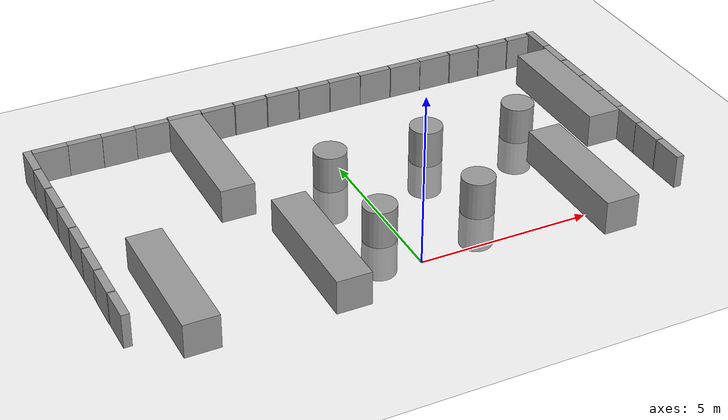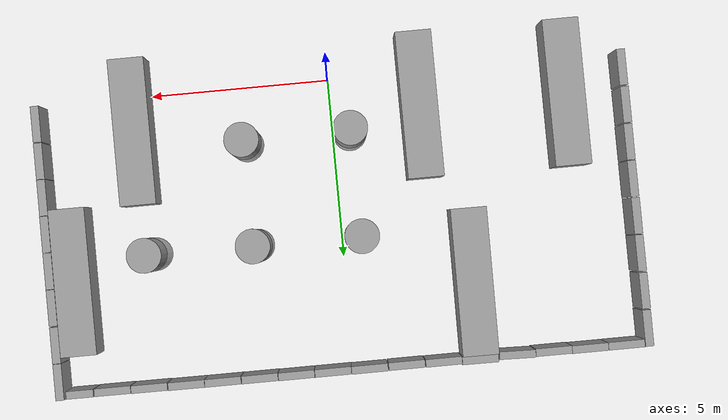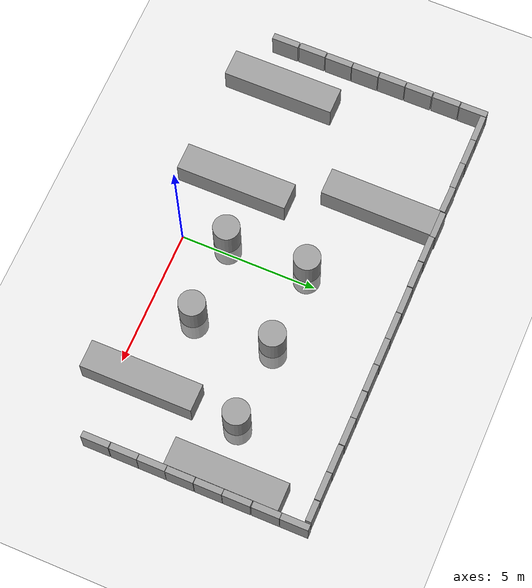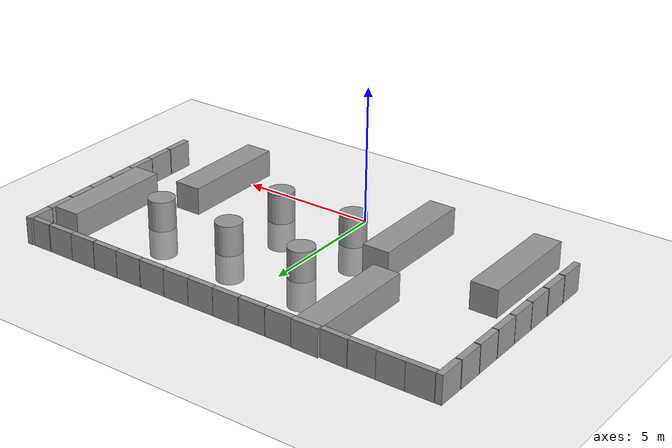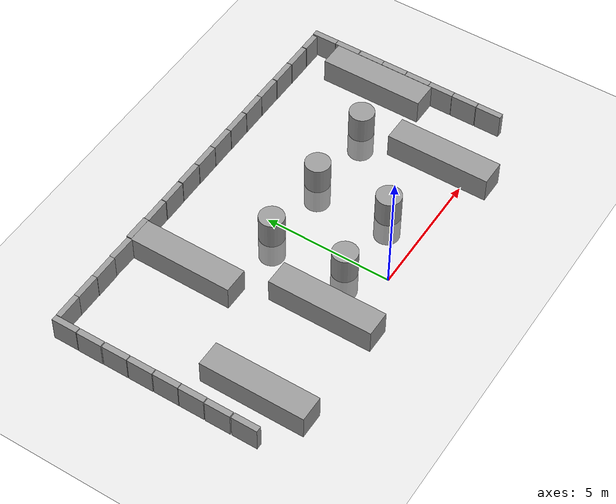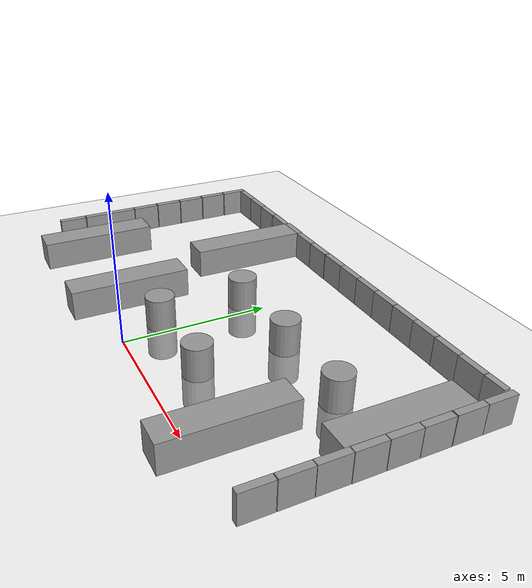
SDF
<sdf version="1.6">
 <world name="default">
  <model name="ground_plane">
   <static>1</static>
   <static>1</static>
   <link name="link">
    <collision name="collision">
     <geometry><plane><normal>0 0 1</normal><size>100 100</size></plane></geometry>
     <surface><friction><ode><mu>100</mu><mu2>50</mu2></ode></friction></surface>
    </collision>
    <visual name="visual">
     <cast_shadows>0</cast_shadows>
     <geometry><plane><normal>0 0 1</normal><size>100 100</size></plane></geometry>
     <material>
      <script><uri>file://media/materials/scripts/gazebo.material</uri><name>Gazebo/Grey</name></script>
     </material>
    </visual>
   </link>
  </model>
  <model name="unit_box_clone">
   <pose>-7.49845 8.11984 0.499999 1e-06 2e-06 0.000176</pose>
   <link name="link">
    <inertial>
     <mass>1</mass>
     <inertia>
      <ixx>0.166667</ixx>
      <ixy>0</ixy>
      <ixz>0</ixz>
      <iyy>0.166667</iyy>
      <iyz>0</iyz>
      <izz>0.166667</izz>
     </inertia>
    </inertial>
    <collision name="collision"><geometry><box><size>1 0.210541 1</size></box></geometry></collision>
    <visual name="visual">
     <geometry><box><size>1 0.210541 1</size></box></geometry>
     <material>
      <script><name>Gazebo/Grey</name><uri>file://media/materials/scripts/gazebo.material</uri></script>
     </material>
    </visual>
   </link>
  </model>
  <model name="unit_box_clone_0">
   <pose>-6.49722 8.11974 0.499994 1e-06 -2e-06 -0.002156</pose>
   <link name="link">
    <inertial>
     <mass>1</mass>
     <inertia>
      <ixx>0.166667</ixx>
      <ixy>0</ixy>
      <ixz>0</ixz>
      <iyy>0.166667</iyy>
      <iyz>0</iyz>
      <izz>0.166667</izz>
     </inertia>
    </inertial>
    <collision name="collision"><geometry><box><size>1 0.210541 1</size></box></geometry></collision>
    <visual name="visual">
     <geometry><box><size>1 0.210541 1</size></box></geometry>
     <material>
      <script><name>Gazebo/Grey</name><uri>file://media/materials/scripts/gazebo.material</uri></script>
     </material>
    </visual>
   </link>
  </model>
  <model name="unit_box_clone_1">
   <pose>-5.49723 8.10845 0.499947 -1e-06 -7e-06 -0.002171</pose>
   <link name="link">
    <inertial>
     <mass>1</mass>
     <inertia>
      <ixx>0.166667</ixx>
      <ixy>0</ixy>
      <ixz>0</ixz>
      <iyy>0.166667</iyy>
      <iyz>0</iyz>
      <izz>0.166667</izz>
     </inertia>
    </inertial>
    <collision name="collision"><geometry><box><size>1 0.210541 1</size></box></geometry></collision>
    <visual name="visual">
     <geometry><box><size>1 0.210541 1</size></box></geometry>
     <material>
      <script><name>Gazebo/Grey</name><uri>file://media/materials/scripts/gazebo.material</uri></script>
     </material>
    </visual>
   </link>
  </model>
  <model name="unit_box_clone_2">
   <pose>-4.49468 8.11066 0.499998 0 -3e-06 -0.027909</pose>
   <link name="link">
    <inertial>
     <mass>1</mass>
     <inertia>
      <ixx>0.166667</ixx>
      <ixy>0</ixy>
      <ixz>0</ixz>
      <iyy>0.166667</iyy>
      <iyz>0</iyz>
      <izz>0.166667</izz>
     </inertia>
    </inertial>
    <collision name="collision"><geometry><box><size>1 0.210541 1</size></box></geometry></collision>
    <visual name="visual">
     <geometry><box><size>1 0.210541 1</size></box></geometry>
     <material>
      <script><name>Gazebo/Grey</name><uri>file://media/materials/scripts/gazebo.material</uri></script>
     </material>
    </visual>
   </link>
  </model>
  <model name="unit_box_clone_3">
   <pose>-3.46832 8.14914 0.5 0 0 -0.008568</pose>
   <link name="link">
    <inertial>
     <mass>1</mass>
     <inertia>
      <ixx>0.166667</ixx>
      <ixy>0</ixy>
      <ixz>0</ixz>
      <iyy>0.166667</iyy>
      <iyz>0</iyz>
      <izz>0.166667</izz>
     </inertia>
    </inertial>
    <collision name="collision"><geometry><box><size>1 0.210541 1</size></box></geometry></collision>
    <visual name="visual">
     <geometry><box><size>1 0.210541 1</size></box></geometry>
     <material>
      <script><name>Gazebo/Grey</name><uri>file://media/materials/scripts/gazebo.material</uri></script>
     </material>
    </visual>
   </link>
  </model>
  <model name="unit_box_clone_4">
   <pose>-2.46316 8.11853 0.499999 1e-06 2e-06 0.000176</pose>
   <link name="link">
    <inertial>
     <mass>1</mass>
     <inertia>
      <ixx>0.166667</ixx>
      <ixy>0</ixy>
      <ixz>0</ixz>
      <iyy>0.166667</iyy>
      <iyz>0</iyz>
      <izz>0.166667</izz>
     </inertia>
    </inertial>
    <collision name="collision"><geometry><box><size>1 0.210541 1</size></box></geometry></collision>
    <visual name="visual">
     <geometry><box><size>1 0.210541 1</size></box></geometry>
     <material>
      <script><name>Gazebo/Grey</name><uri>file://media/materials/scripts/gazebo.material</uri></script>
     </material>
    </visual>
   </link>
  </model>
  <model name="unit_box_clone_5">
   <pose>-1.44425 8.11187 0.499999 1e-06 2e-06 0.000176</pose>
   <link name="link">
    <inertial>
     <mass>1</mass>
     <inertia>
      <ixx>0.166667</ixx>
      <ixy>0</ixy>
      <ixz>0</ixz>
      <iyy>0.166667</iyy>
      <iyz>0</iyz>
      <izz>0.166667</izz>
     </inertia>
    </inertial>
    <collision name="collision"><geometry><box><size>1 0.210541 1</size></box></geometry></collision>
    <visual name="visual">
     <geometry><box><size>1 0.210541 1</size></box></geometry>
     <material>
      <script><name>Gazebo/Grey</name><uri>file://media/materials/scripts/gazebo.material</uri></script>
     </material>
    </visual>
   </link>
  </model>
  <model name="unit_box_clone_6">
   <pose>-0.418679 8.11852 0.499999 1e-06 2e-06 0.000176</pose>
   <link name="link">
    <inertial>
     <mass>1</mass>
     <inertia>
      <ixx>0.166667</ixx>
      <ixy>0</ixy>
      <ixz>0</ixz>
      <iyy>0.166667</iyy>
      <iyz>0</iyz>
      <izz>0.166667</izz>
     </inertia>
    </inertial>
    <collision name="collision"><geometry><box><size>1 0.210541 1</size></box></geometry></collision>
    <visual name="visual">
     <geometry><box><size>1 0.210541 1</size></box></geometry>
     <material>
      <script><name>Gazebo/Grey</name><uri>file://media/materials/scripts/gazebo.material</uri></script>
     </material>
    </visual>
   </link>
  </model>
  <model name="unit_box_clone_7">
   <pose>0.59284 8.11139 0.499999 1e-06 2e-06 0.000176</pose>
   <link name="link">
    <inertial>
     <mass>1</mass>
     <inertia>
      <ixx>0.166667</ixx>
      <ixy>0</ixy>
      <ixz>0</ixz>
      <iyy>0.166667</iyy>
      <iyz>0</iyz>
      <izz>0.166667</izz>
     </inertia>
    </inertial>
    <collision name="collision"><geometry><box><size>1 0.210541 1</size></box></geometry></collision>
    <visual name="visual">
     <geometry><box><size>1 0.210541 1</size></box></geometry>
     <material>
      <script><name>Gazebo/Grey</name><uri>file://media/materials/scripts/gazebo.material</uri></script>
     </material>
    </visual>
   </link>
  </model>
  <model name="unit_box_clone_8">
   <pose>1.60043 8.1099 0.499999 1e-06 2e-06 0.000176</pose>
   <link name="link">
    <inertial>
     <mass>1</mass>
     <inertia>
      <ixx>0.166667</ixx>
      <ixy>0</ixy>
      <ixz>0</ixz>
      <iyy>0.166667</iyy>
      <iyz>0</iyz>
      <izz>0.166667</izz>
     </inertia>
    </inertial>
    <collision name="collision"><geometry><box><size>1 0.210541 1</size></box></geometry></collision>
    <visual name="visual">
     <geometry><box><size>1 0.210541 1</size></box></geometry>
     <material>
      <script><name>Gazebo/Grey</name><uri>file://media/materials/scripts/gazebo.material</uri></script>
     </material>
    </visual>
   </link>
  </model>
  <model name="unit_box_clone_9">
   <pose>2.60987 8.10271 0.499999 1e-06 2e-06 0.000176</pose>
   <link name="link">
    <inertial>
     <mass>1</mass>
     <inertia>
      <ixx>0.166667</ixx>
      <ixy>0</ixy>
      <ixz>0</ixz>
      <iyy>0.166667</iyy>
      <iyz>0</iyz>
      <izz>0.166667</izz>
     </inertia>
    </inertial>
    <collision name="collision"><geometry><box><size>1 0.210541 1</size></box></geometry></collision>
    <visual name="visual">
     <geometry><box><size>1 0.210541 1</size></box></geometry>
     <material>
      <script><name>Gazebo/Grey</name><uri>file://media/materials/scripts/gazebo.material</uri></script>
     </material>
    </visual>
   </link>
  </model>
  <model name="unit_box_clone_10">
   <pose>3.62649 8.09912 0.499999 1e-06 2e-06 0.000176</pose>
   <link name="link">
    <inertial>
     <mass>1</mass>
     <inertia>
      <ixx>0.166667</ixx>
      <ixy>0</ixy>
      <ixz>0</ixz>
      <iyy>0.166667</iyy>
      <iyz>0</iyz>
      <izz>0.166667</izz>
     </inertia>
    </inertial>
    <collision name="collision"><geometry><box><size>1 0.210541 1</size></box></geometry></collision>
    <visual name="visual">
     <geometry><box><size>1 0.210541 1</size></box></geometry>
     <material>
      <script><name>Gazebo/Grey</name><uri>file://media/materials/scripts/gazebo.material</uri></script>
     </material>
    </visual>
   </link>
  </model>
  <model name="unit_box_clone_11">
   <pose>4.63311 8.09551 0.499999 1e-06 -2e-06 -0.00309</pose>
   <link name="link">
    <inertial>
     <mass>1</mass>
     <inertia>
      <ixx>0.166667</ixx>
      <ixy>0</ixy>
      <ixz>0</ixz>
      <iyy>0.166667</iyy>
      <iyz>0</iyz>
      <izz>0.166667</izz>
     </inertia>
    </inertial>
    <collision name="collision"><geometry><box><size>1 0.210541 1</size></box></geometry></collision>
    <visual name="visual">
     <geometry><box><size>1 0.210541 1</size></box></geometry>
     <material>
      <script><name>Gazebo/Grey</name><uri>file://media/materials/scripts/gazebo.material</uri></script>
     </material>
    </visual>
   </link>
  </model>
  <model name="unit_box_0_clone_0">
   <pose>8.11522 6.68459 0.5 -0 -0 -0.000284</pose>
   <link name="link">
    <inertial>
     <mass>1</mass>
     <inertia>
      <ixx>0.166667</ixx>
      <ixy>0</ixy>
      <ixz>0</ixz>
      <iyy>0.166667</iyy>
      <iyz>0</iyz>
      <izz>0.166667</izz>
     </inertia>
    </inertial>
    <collision name="collision"><geometry><box><size>0.230819 1 1</size></box></geometry></collision>
    <visual name="visual">
     <geometry><box><size>0.230819 1 1</size></box></geometry>
     <material>
      <script><name>Gazebo/Grey</name><uri>file://media/materials/scripts/gazebo.material</uri></script>
     </material>
    </visual>
   </link>
  </model>
  <model name="unit_box_0_clone_1">
   <pose>8.11915 5.6517 0.5 0 -0 0.000163</pose>
   <link name="link">
    <inertial>
     <mass>1</mass>
     <inertia>
      <ixx>0.166667</ixx>
      <ixy>0</ixy>
      <ixz>0</ixz>
      <iyy>0.166667</iyy>
      <iyz>0</iyz>
      <izz>0.166667</izz>
     </inertia>
    </inertial>
    <collision name="collision"><geometry><box><size>0.230819 1 1</size></box></geometry></collision>
    <visual name="visual">
     <geometry><box><size>0.230819 1 1</size></box></geometry>
     <material>
      <script><name>Gazebo/Grey</name><uri>file://media/materials/scripts/gazebo.material</uri></script>
     </material>
    </visual>
   </link>
  </model>
  <model name="unit_box_0_clone_2">
   <pose>8.11914 4.64017 0.5 0 -0 0.000124</pose>
   <link name="link">
    <inertial>
     <mass>1</mass>
     <inertia>
      <ixx>0.166667</ixx>
      <ixy>0</ixy>
      <ixz>0</ixz>
      <iyy>0.166667</iyy>
      <iyz>0</iyz>
      <izz>0.166667</izz>
     </inertia>
    </inertial>
    <collision name="collision"><geometry><box><size>0.230819 1 1</size></box></geometry></collision>
    <visual name="visual">
     <geometry><box><size>0.230819 1 1</size></box></geometry>
     <material>
      <script><name>Gazebo/Grey</name><uri>file://media/materials/scripts/gazebo.material</uri></script>
     </material>
    </visual>
   </link>
  </model>
  <model name="unit_box_0_clone_3">
   <pose>8.11914 3.62227 0.5 0 -0 0.000105</pose>
   <link name="link">
    <inertial>
     <mass>1</mass>
     <inertia>
      <ixx>0.166667</ixx>
      <ixy>0</ixy>
      <ixz>0</ixz>
      <iyy>0.166667</iyy>
      <iyz>0</iyz>
      <izz>0.166667</izz>
     </inertia>
    </inertial>
    <collision name="collision"><geometry><box><size>0.230819 1 1</size></box></geometry></collision>
    <visual name="visual">
     <geometry><box><size>0.230819 1 1</size></box></geometry>
     <material>
      <script><name>Gazebo/Grey</name><uri>file://media/materials/scripts/gazebo.material</uri></script>
     </material>
    </visual>
   </link>
  </model>
  <model name="unit_box_0_clone_4">
   <pose>8.11332 2.61062 0.500001 -2e-06 -1e-06 -0.001181</pose>
   <link name="link">
    <inertial>
     <mass>1</mass>
     <inertia>
      <ixx>0.166667</ixx>
      <ixy>0</ixy>
      <ixz>0</ixz>
      <iyy>0.166667</iyy>
      <iyz>0</iyz>
      <izz>0.166667</izz>
     </inertia>
    </inertial>
    <collision name="collision"><geometry><box><size>0.230819 1 1</size></box></geometry></collision>
    <visual name="visual">
     <geometry><box><size>0.230819 1 1</size></box></geometry>
     <material>
      <script><name>Gazebo/Grey</name><uri>file://media/materials/scripts/gazebo.material</uri></script>
     </material>
    </visual>
   </link>
  </model>
  <model name="unit_box_0_clone_5">
   <pose>8.11277 1.5992 0.5 0 -0 0.000105</pose>
   <link name="link">
    <inertial>
     <mass>1</mass>
     <inertia>
      <ixx>0.166667</ixx>
      <ixy>0</ixy>
      <ixz>0</ixz>
      <iyy>0.166667</iyy>
      <iyz>0</iyz>
      <izz>0.166667</izz>
     </inertia>
    </inertial>
    <collision name="collision"><geometry><box><size>0.230819 1 1</size></box></geometry></collision>
    <visual name="visual">
     <geometry><box><size>0.230819 1 1</size></box></geometry>
     <material>
      <script><name>Gazebo/Grey</name><uri>file://media/materials/scripts/gazebo.material</uri></script>
     </material>
    </visual>
   </link>
  </model>
  <model name="unit_box_0_clone_6">
   <pose>8.11277 0.574942 0.5 0 -0 0.000105</pose>
   <link name="link">
    <inertial>
     <mass>1</mass>
     <inertia>
      <ixx>0.166667</ixx>
      <ixy>0</ixy>
      <ixz>0</ixz>
      <iyy>0.166667</iyy>
      <iyz>0</iyz>
      <izz>0.166667</izz>
     </inertia>
    </inertial>
    <collision name="collision"><geometry><box><size>0.230819 1 1</size></box></geometry></collision>
    <visual name="visual">
     <geometry><box><size>0.230819 1 1</size></box></geometry>
     <material>
      <script><name>Gazebo/Grey</name><uri>file://media/materials/scripts/gazebo.material</uri></script>
     </material>
    </visual>
   </link>
  </model>
  <model name="unit_box_0_clone_4_clone">
   <pose>-8.12647 7.71769 0.5 0 -0 0.000105</pose>
   <link name="link">
    <inertial>
     <mass>1</mass>
     <inertia>
      <ixx>0.166667</ixx>
      <ixy>0</ixy>
      <ixz>0</ixz>
      <iyy>0.166667</iyy>
      <iyz>0</iyz>
      <izz>0.166667</izz>
     </inertia>
    </inertial>
    <collision name="collision"><geometry><box><size>0.230819 1 1</size></box></geometry></collision>
    <visual name="visual">
     <geometry><box><size>0.230819 1 1</size></box></geometry>
     <material>
      <script><name>Gazebo/Grey</name><uri>file://media/materials/scripts/gazebo.material</uri></script>
     </material>
    </visual>
   </link>
  </model>
  <model name="unit_box_0_clone_4_clone_0">
   <pose>-8.13281 6.68715 0.5 0 -0 0.000105</pose>
   <link name="link">
    <inertial>
     <mass>1</mass>
     <inertia>
      <ixx>0.166667</ixx>
      <ixy>0</ixy>
      <ixz>0</ixz>
      <iyy>0.166667</iyy>
      <iyz>0</iyz>
      <izz>0.166667</izz>
     </inertia>
    </inertial>
    <collision name="collision"><geometry><box><size>0.230819 1 1</size></box></geometry></collision>
    <visual name="visual">
     <geometry><box><size>0.230819 1 1</size></box></geometry>
     <material>
      <script><name>Gazebo/Grey</name><uri>file://media/materials/scripts/gazebo.material</uri></script>
     </material>
    </visual>
   </link>
  </model>
  <model name="unit_box_0_clone_4_clone_1">
   <pose>-8.12606 5.64723 0.5 0 -0 0.000105</pose>
   <link name="link">
    <inertial>
     <mass>1</mass>
     <inertia>
      <ixx>0.166667</ixx>
      <ixy>0</ixy>
      <ixz>0</ixz>
      <iyy>0.166667</iyy>
      <iyz>0</iyz>
      <izz>0.166667</izz>
     </inertia>
    </inertial>
    <collision name="collision"><geometry><box><size>0.230819 1 1</size></box></geometry></collision>
    <visual name="visual">
     <geometry><box><size>0.230819 1 1</size></box></geometry>
     <material>
      <script><name>Gazebo/Grey</name><uri>file://media/materials/scripts/gazebo.material</uri></script>
     </material>
    </visual>
   </link>
  </model>
  <model name="unit_box_0_clone_4_clone_2">
   <pose>-8.12607 4.62081 0.5 0 -0 0.000105</pose>
   <link name="link">
    <inertial>
     <mass>1</mass>
     <inertia>
      <ixx>0.166667</ixx>
      <ixy>0</ixy>
      <ixz>0</ixz>
      <iyy>0.166667</iyy>
      <iyz>0</iyz>
      <izz>0.166667</izz>
     </inertia>
    </inertial>
    <collision name="collision"><geometry><box><size>0.230819 1 1</size></box></geometry></collision>
    <visual name="visual">
     <geometry><box><size>0.230819 1 1</size></box></geometry>
     <material>
      <script><name>Gazebo/Grey</name><uri>file://media/materials/scripts/gazebo.material</uri></script>
     </material>
    </visual>
   </link>
  </model>
  <model name="unit_box_0_clone_4_clone_3">
   <pose>-8.11932 3.59439 0.5 0 -0 0.000105</pose>
   <link name="link">
    <inertial>
     <mass>1</mass>
     <inertia>
      <ixx>0.166667</ixx>
      <ixy>0</ixy>
      <ixz>0</ixz>
      <iyy>0.166667</iyy>
      <iyz>0</iyz>
      <izz>0.166667</izz>
     </inertia>
    </inertial>
    <collision name="collision"><geometry><box><size>0.230819 1 1</size></box></geometry></collision>
    <visual name="visual">
     <geometry><box><size>0.230819 1 1</size></box></geometry>
     <material>
      <script><name>Gazebo/Grey</name><uri>file://media/materials/scripts/gazebo.material</uri></script>
     </material>
    </visual>
   </link>
  </model>
  <model name="unit_box_0_clone_4_clone_4">
   <pose>-8.11932 2.57473 0.5 0 -0 0.000105</pose>
   <link name="link">
    <inertial>
     <mass>1</mass>
     <inertia>
      <ixx>0.166667</ixx>
      <ixy>0</ixy>
      <ixz>0</ixz>
      <iyy>0.166667</iyy>
      <iyz>0</iyz>
      <izz>0.166667</izz>
     </inertia>
    </inertial>
    <collision name="collision"><geometry><box><size>0.230819 1 1</size></box></geometry></collision>
    <visual name="visual">
     <geometry><box><size>0.230819 1 1</size></box></geometry>
     <material>
      <script><name>Gazebo/Grey</name><uri>file://media/materials/scripts/gazebo.material</uri></script>
     </material>
    </visual>
   </link>
  </model>
  <model name="unit_box_0_clone_4_clone_5">
   <pose>-8.12608 1.54156 0.5 0 -0 0.000105</pose>
   <link name="link">
    <inertial>
     <mass>1</mass>
     <inertia>
      <ixx>0.166667</ixx>
      <ixy>0</ixy>
      <ixz>0</ixz>
      <iyy>0.166667</iyy>
      <iyz>0</iyz>
      <izz>0.166667</izz>
     </inertia>
    </inertial>
    <collision name="collision"><geometry><box><size>0.230819 1 1</size></box></geometry></collision>
    <visual name="visual">
     <geometry><box><size>0.230819 1 1</size></box></geometry>
     <material>
      <script><name>Gazebo/Grey</name><uri>file://media/materials/scripts/gazebo.material</uri></script>
     </material>
    </visual>
   </link>
  </model>
  <model name="unit_box_0_clone_4_clone_6">
   <pose>-8.11933 0.501634 0.5 0 -0 0.000105</pose>
   <link name="link">
    <inertial>
     <mass>1</mass>
     <inertia>
      <ixx>0.166667</ixx>
      <ixy>0</ixy>
      <ixz>0</ixz>
      <iyy>0.166667</iyy>
      <iyz>0</iyz>
      <izz>0.166667</izz>
     </inertia>
    </inertial>
    <collision name="collision"><geometry><box><size>0.230819 1 1</size></box></geometry></collision>
    <visual name="visual">
     <geometry><box><size>0.230819 1 1</size></box></geometry>
     <material>
      <script><name>Gazebo/Grey</name><uri>file://media/materials/scripts/gazebo.material</uri></script>
     </material>
    </visual>
   </link>
  </model>
  <model name="unit_box_0_clone_0_clone">
   <pose>8.11438 7.69322 0.5 0 -0 0.000145</pose>
   <link name="link">
    <inertial>
     <mass>1</mass>
     <inertia>
      <ixx>0.166667</ixx>
      <ixy>0</ixy>
      <ixz>0</ixz>
      <iyy>0.166667</iyy>
      <iyz>0</iyz>
      <izz>0.166667</izz>
     </inertia>
    </inertial>
    <collision name="collision"><geometry><box><size>0.230819 1 1</size></box></geometry></collision>
    <visual name="visual">
     <geometry><box><size>0.230819 1 1</size></box></geometry>
     <material>
      <script><name>Gazebo/Grey</name><uri>file://media/materials/scripts/gazebo.material</uri></script>
     </material>
    </visual>
   </link>
  </model>
  <model name="unit_box_clone_11_clone">
   <pose>5.65439 8.08335 0.5 -0 -0 -0.003113</pose>
   <link name="link">
    <inertial>
     <mass>1</mass>
     <inertia>
      <ixx>0.166667</ixx>
      <ixy>0</ixy>
      <ixz>0</ixz>
      <iyy>0.166667</iyy>
      <iyz>0</iyz>
      <izz>0.166667</izz>
     </inertia>
    </inertial>
    <collision name="collision"><geometry><box><size>1 0.210541 1</size></box></geometry></collision>
    <visual name="visual">
     <geometry><box><size>1 0.210541 1</size></box></geometry>
     <material>
      <script><name>Gazebo/Grey</name><uri>file://media/materials/scripts/gazebo.material</uri></script>
     </material>
    </visual>
   </link>
  </model>
  <model name="unit_box_clone_11_clone_0">
   <pose>6.66439 8.07324 0.499999 -1e-06 -2e-06 -0.003182</pose>
   <link name="link">
    <inertial>
     <mass>1</mass>
     <inertia>
      <ixx>0.166667</ixx>
      <ixy>0</ixy>
      <ixz>0</ixz>
      <iyy>0.166667</iyy>
      <iyz>0</iyz>
      <izz>0.166667</izz>
     </inertia>
    </inertial>
    <collision name="collision"><geometry><box><size>1 0.210541 1</size></box></geometry></collision>
    <visual name="visual">
     <geometry><box><size>1 0.210541 1</size></box></geometry>
     <material>
      <script><name>Gazebo/Grey</name><uri>file://media/materials/scripts/gazebo.material</uri></script>
     </material>
    </visual>
   </link>
  </model>
  <model name="unit_box_clone_11_clone_1_clone">
   <pose>7.56437 8.07323 0.499997 3e-06 -7e-06 -0.005123</pose>
   <link name="link">
    <inertial>
     <mass>1</mass>
     <inertia>
      <ixx>0.166667</ixx>
      <ixy>0</ixy>
      <ixz>0</ixz>
      <iyy>0.166667</iyy>
      <iyz>0</iyz>
      <izz>0.166667</izz>
     </inertia>
    </inertial>
    <collision name="collision"><geometry><box><size>0.750223 0.210541 1</size></box></geometry></collision>
    <visual name="visual">
     <geometry><box><size>0.750223 0.210541 1</size></box></geometry>
     <material>
      <script><name>Gazebo/Grey</name><uri>file://media/materials/scripts/gazebo.material</uri></script>
     </material>
    </visual>
   </link>
  </model>
  <model name="unit_box_clone_12">
   <pose>-3.51307 6.00736 0.499843 0 0 -0.00826</pose>
   <link name="link">
    <inertial>
     <mass>1</mass>
     <inertia>
      <ixx>0.166667</ixx>
      <ixy>0</ixy>
      <ixz>0</ixz>
      <iyy>0.166667</iyy>
      <iyz>0</iyz>
      <izz>0.166667</izz>
     </inertia>
    </inertial>
    <collision name="collision"><geometry><box><size>1 4.07271 1</size></box></geometry></collision>
    <visual name="visual">
     <geometry><box><size>1 4.07271 1</size></box></geometry>
     <material>
      <script><name>Gazebo/Grey</name><uri>file://media/materials/scripts/gazebo.material</uri></script>
     </material>
    </visual>
   </link>
  </model>
  <model name="unit_box_clone_12_clone">
   <pose>-2.46513 0.99669 0.499186 0.0004 -0 -6.9e-05</pose>
   <link name="link">
    <inertial>
     <mass>1</mass>
     <inertia>
      <ixx>0.166667</ixx>
      <ixy>0</ixy>
      <ixz>0</ixz>
      <iyy>0.166667</iyy>
      <iyz>0</iyz>
      <izz>0.166667</izz>
     </inertia>
    </inertial>
    <collision name="collision"><geometry><box><size>1 4.07271 1</size></box></geometry></collision>
    <visual name="visual">
     <geometry><box><size>1 4.07271 1</size></box></geometry>
     <material>
      <script><name>Gazebo/Grey</name><uri>file://media/materials/scripts/gazebo.material</uri></script>
     </material>
    </visual>
   </link>
  </model>
  <model name="unit_box_clone_12_clone_0_clone_clone">
   <pose>5.50902 1.01829 0.499186 -0.0004 0 -0.00035</pose>
   <link name="link">
    <inertial>
     <mass>1</mass>
     <inertia>
      <ixx>0.166667</ixx>
      <ixy>0</ixy>
      <ixz>0</ixz>
      <iyy>0.166667</iyy>
      <iyz>0</iyz>
      <izz>0.166667</izz>
     </inertia>
    </inertial>
    <collision name="collision"><geometry><box><size>1 4.07271 1</size></box></geometry></collision>
    <visual name="visual">
     <geometry><box><size>1 4.07271 1</size></box></geometry>
     <material>
      <script><name>Gazebo/Grey</name><uri>file://media/materials/scripts/gazebo.material</uri></script>
     </material>
    </visual>
   </link>
  </model>
  <model name="unit_box_clone_12_clone_0_clone_clone_0">
   <pose>7.49899 5.00265 0.499998 -0 5e-06 -0.000337</pose>
   <link name="link">
    <inertial>
     <mass>1</mass>
     <inertia>
      <ixx>0.166667</ixx>
      <ixy>0</ixy>
      <ixz>0</ixz>
      <iyy>0.166667</iyy>
      <iyz>0</iyz>
      <izz>0.166667</izz>
     </inertia>
    </inertial>
    <collision name="collision"><geometry><box><size>1 4.07271 1</size></box></geometry></collision>
    <visual name="visual">
     <geometry><box><size>1 4.07271 1</size></box></geometry>
     <material>
      <script><name>Gazebo/Grey</name><uri>file://media/materials/scripts/gazebo.material</uri></script>
     </material>
    </visual>
   </link>
  </model>
  <model name="unit_box_clone_12_clone_0_clone_1">
   <pose>-6.54009 1.03741 0.499186 0.0004 -0 -9.2e-05</pose>
   <link name="link">
    <inertial>
     <mass>1</mass>
     <inertia>
      <ixx>0.166667</ixx>
      <ixy>0</ixy>
      <ixz>0</ixz>
      <iyy>0.166667</iyy>
      <iyz>0</iyz>
      <izz>0.166667</izz>
     </inertia>
    </inertial>
    <collision name="collision"><geometry><box><size>1 4.07271 1</size></box></geometry></collision>
    <visual name="visual">
     <geometry><box><size>1 4.07271 1</size></box></geometry>
     <material>
      <script><name>Gazebo/Grey</name><uri>file://media/materials/scripts/gazebo.material</uri></script>
     </material>
    </visual>
   </link>
  </model>
  <model name="unit_cylinder_153_clone_clone_5_clone_clone_13_clone_0_clone_29_clone_32_clone_0_clone_4_clone_46_clone_42_clone_clone">
   <static>1</static>
   <pose>5.46186 4.45652 0 0 -0 0</pose>
   <link name="link">
    <inertial>
     <mass>1</mass>
     <inertia><ixx>0.145833</ixx><ixy>0</ixy><ixz>0</ixz><iyy>0.145833</iyy><iyz>0</iyz><izz>0.125</izz></inertia>
    </inertial>
    <collision name="collision">
     <geometry><cylinder><radius>0.484115</radius><length>2.18667</length></cylinder></geometry>
    </collision>
    <visual name="visual">
     <geometry><cylinder><radius>0.484115</radius><length>2.18667</length></cylinder></geometry>
     <material>
      <script><name>Gazebo/Grey</name><uri>file://media/materials/scripts/gazebo.material</uri></script>
     </material>
    </visual>
   </link>
  </model>
  <model name="unit_cylinder_153_clone_clone_5_clone_clone_13_clone_0_clone_29_clone_32_clone_0_clone_4_clone_46_clone_42_clone_clone_clone_0">
   <static>1</static>
   <pose>2.46727 4.4801 0 0 -0 0</pose>
   <link name="link">
    <inertial>
     <mass>1</mass>
     <inertia><ixx>0.145833</ixx><ixy>0</ixy><ixz>0</ixz><iyy>0.145833</iyy><iyz>0</iyz><izz>0.125</izz></inertia>
    </inertial>
    <collision name="collision">
     <geometry><cylinder><radius>0.484115</radius><length>2.18667</length></cylinder></geometry>
    </collision>
    <visual name="visual">
     <geometry><cylinder><radius>0.484115</radius><length>2.18667</length></cylinder></geometry>
     <material>
      <script><name>Gazebo/Grey</name><uri>file://media/materials/scripts/gazebo.material</uri></script>
     </material>
    </visual>
   </link>
  </model>
  <model name="unit_cylinder_153_clone_clone_5_clone_clone_13_clone_0_clone_29_clone_32_clone_0_clone_4_clone_46_clone_42_clone_clone_clone_1">
   <static>1</static>
   <pose>-0.550903 4.4801 0 0 -0 0</pose>
   <link name="link">
    <inertial>
     <mass>1</mass>
     <inertia><ixx>0.145833</ixx><ixy>0</ixy><ixz>0</ixz><iyy>0.145833</iyy><iyz>0</iyz><izz>0.125</izz></inertia>
    </inertial>
    <collision name="collision">
     <geometry><cylinder><radius>0.484115</radius><length>2.18667</length></cylinder></geometry>
    </collision>
    <visual name="visual">
     <geometry><cylinder><radius>0.484115</radius><length>2.18667</length></cylinder></geometry>
     <material>
      <script><name>Gazebo/Grey</name><uri>file://media/materials/scripts/gazebo.material</uri></script>
     </material>
    </visual>
   </link>
  </model>
  <model name="unit_cylinder_153_clone_clone_5_clone_clone_13_clone_0_clone_29_clone_32_clone_0_clone_4_clone_46_clone_42_clone_clone_clone_2">
   <static>1</static>
   <pose>2.51443 1.53266 0 0 -0 0</pose>
   <link name="link">
    <inertial>
     <mass>1</mass>
     <inertia><ixx>0.145833</ixx><ixy>0</ixy><ixz>0</ixz><iyy>0.145833</iyy><iyz>0</iyz><izz>0.125</izz></inertia>
    </inertial>
    <collision name="collision">
     <geometry><cylinder><radius>0.484115</radius><length>2.18667</length></cylinder></geometry>
    </collision>
    <visual name="visual">
     <geometry><cylinder><radius>0.484115</radius><length>2.18667</length></cylinder></geometry>
     <material>
      <script><name>Gazebo/Grey</name><uri>file://media/materials/scripts/gazebo.material</uri></script>
     </material>
    </visual>
   </link>
  </model>
  <model name="unit_cylinder_153_clone_clone_5_clone_clone_13_clone_0_clone_29_clone_32_clone_0_clone_4_clone_46_clone_42_clone_clone_clone_3">
   <static>1</static>
   <pose>-0.503744 1.48551 0 0 -0 0</pose>
   <link name="link">
    <inertial>
     <mass>1</mass>
     <inertia><ixx>0.145833</ixx><ixy>0</ixy><ixz>0</ixz><iyy>0.145833</iyy><iyz>0</iyz><izz>0.125</izz></inertia>
    </inertial>
    <collision name="collision">
     <geometry><cylinder><radius>0.484115</radius><length>2.18667</length></cylinder></geometry>
    </collision>
    <visual name="visual">
     <geometry><cylinder><radius>0.484115</radius><length>2.18667</length></cylinder></geometry>
     <material>
      <script><name>Gazebo/Grey</name><uri>file://media/materials/scripts/gazebo.material</uri></script>
     </material>
    </visual>
   </link>
  </model>
 </world>
</sdf>
